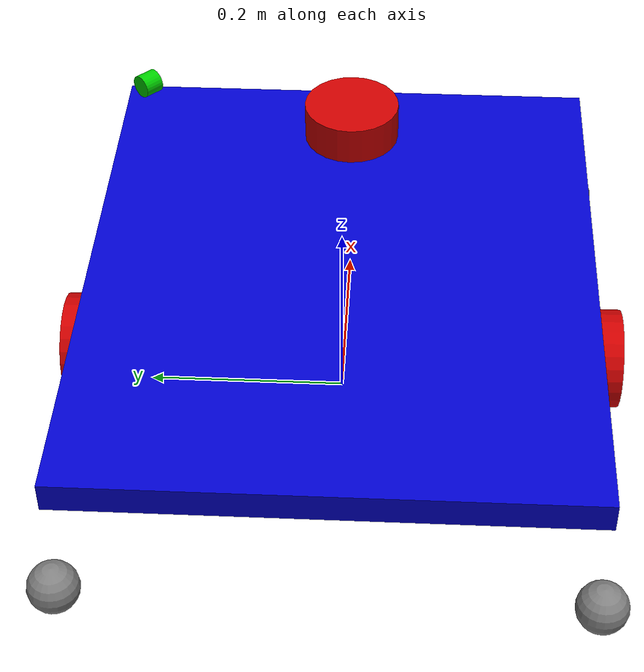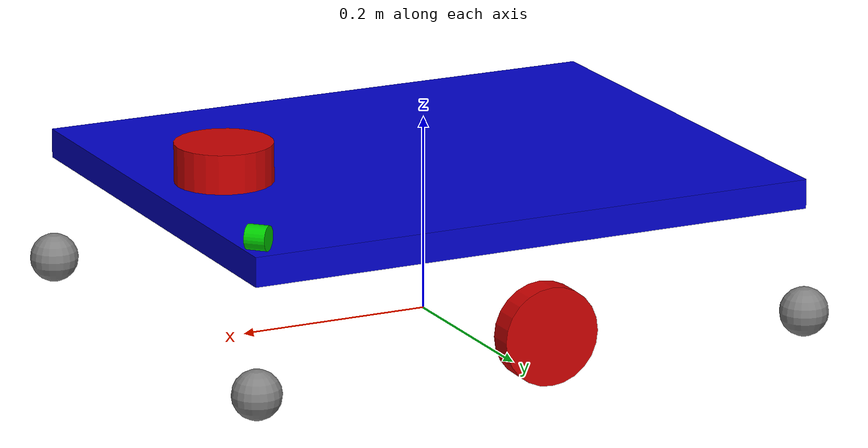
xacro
<?xml version="1.0"?>
<robot name="amr" xmlns:xacro="http://www.ros.org/wiki/xacro">

    <xacro:arg name="use_ros2_control" default="true" />

    <xacro:include filename="common_properties.xacro" />
    <xacro:include filename="robot_base.xacro" />

    <xacro:if value="$(arg use_ros2_control)">
        <xacro:include filename="ros2_control.xacro" />
    </xacro:if>
    <xacro:unless value="$(arg use_ros2_control)">
        <xacro:include filename="robot_base_gazebo.xacro" />
    </xacro:unless>

    <xacro:include filename="lidar.xacro" />
    <xacro:include filename="ultrasonic.xacro" />

</robot>

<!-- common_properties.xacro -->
<!-- to recognize the file as xml file, URDF uses metric system -->
<robot xmlns:xacro="http://www.ros.org/wiki/xacro">

    <!-- colour tags -->
    <material name="black">
        <color rgba="0.0 0.0 0.0 1.0"/>
    </material>

    <material name="blue">
        <color rgba="0 0 0.8 1" />
    </material>

    <material name="green">
        <color rgba="0.0 0.8 0.0 1.0"/>
    </material>

    <material name="grey">
        <color rgba="0.5 0.5 0.5 1" />
    </material>

    <material name="orange">
        <color rgba="0.8 0.4 0 1" />
    </material>

    <material name="yellow">
        <color rgba="0.8 0.8 0 1" />
    </material>

    <material name="brown">
        <color rgba="${222/255} ${207/255} ${195/255} 1.0"/>
    </material>

    <material name="red">
        <color rgba="0.8 0 0 1" />
    </material>

    <material name="white">
        <color rgba="1.0 1.0 1.0 1.0"/>
    </material>

    <!-- macros for defining inertia -->

    <xacro:macro name="box_inertia" params="m l w h xyz rpy">
        <inertial>
            <origin xyz="${xyz}" rpy="${rpy}" />
            <mass value="${m}" />
            <inertia ixx="${(m / 12.0) * (h*h + l*l)}" ixy="0" ixz="0"
                     iyy="${(m / 12.0) * (w*w + l*l)}" iyz="0"
                     izz="${(m / 12.0) * (w*w + h*h)}" />
        </inertial>
    </xacro:macro>

    <xacro:macro name="cylinder_inertia" params="m r h xyz rpy">
        <inertial>
            <origin xyz="${xyz}" rpy="${rpy}" />
            <mass value="${m}" />
            <inertia ixx="${(m / 12.0) * (3*r*r + h*h)}" ixy="0" ixz="0"
                     iyy="${(m / 12.0) * (3*r*r + h*h)}" iyz="0"
                     izz="${(m / 2.0) * (r*r)}" />
        </inertial>
    </xacro:macro>

    <xacro:macro name="sphere_inertia" params="m r xyz rpy">
        <inertial>
            <origin xyz="${xyz}" rpy="${rpy}" />
            <mass value="${m}" />
            <inertia ixx="${((2/5)*m*r*r)}" ixy="0" ixz="0"
                     iyy="${((2/5)*m*r*r)}" iyz="0"
                     izz="${((2/5)*m*r*r)}" />
        </inertial>
    </xacro:macro>

</robot>

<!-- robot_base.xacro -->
<!-- to recognize the file as xml file, URDF uses metric system -->
<robot xmlns:xacro="http://www.ros.org/wiki/xacro">

    <!-- declared variables -->
    <xacro:property name="base_length" value="0.6" />
    <xacro:property name="base_width" value="0.5" />
    <xacro:property name="base_height" value="0.03" />
    <xacro:property name="wheel_radius" value="0.05" />
    <xacro:property name="wheel_length" value="0.026" />
    <xacro:property name="caster_wheel_radius" value="${wheel_radius / 2.0}" />
    <xacro:property name="base_mass" value="5.0" />
    <xacro:property name="wheel_mass" value="1.00" />
    <xacro:property name="castor_wheel_mass" value="0.5" />

    <!-- robot links -->

    <link name="base_footprint" />

    <link name="base_link" >
        <visual>
            <geometry>
                <box size="${base_length} ${base_width} ${base_height}" />
            </geometry>
            <origin xyz="0 0 0" rpy="0 0 0" />
            <material name="blue" />
        </visual>
        <collision>
            <geometry>
                <box size="${base_length} ${base_width} ${base_height}" />     <!-- set size -->
            </geometry>
            <origin xyz="0 0 0" rpy="0 0 0" />
        </collision>
        <xacro:box_inertia m="${base_mass}" l="${2*base_length}" w="${2*base_width}" h="${2*base_height}"
                           xyz="0 0 ${wheel_radius}" rpy="0 0 0" />
    </link>

    <link name="left_wheel_link">    <!-- set second link name -->
        <visual>
            <geometry>
                <cylinder radius="${wheel_radius}" length="${wheel_length}" />     <!-- set size -->
            </geometry>
            <origin xyz="0 0 0" rpy="0 0 0" />
            <material name="red" />
        </visual>
        <collision>
            <geometry>
                <cylinder radius="${wheel_radius}" length="${wheel_length}" />     <!-- set size -->
            </geometry>
            <origin xyz="0 0 0" rpy="0 0 0" />
        </collision>
        <xacro:cylinder_inertia m="${wheel_mass}" r="${2*wheel_radius}" h="${2*wheel_length}"
                                xyz="0 0 0" rpy="0 0 0" />
    </link>

    <link name="right_wheel_link">    <!-- set second link name -->
        <visual>
            <geometry>
                <cylinder radius="${wheel_radius}" length="${wheel_length}" />     <!-- set size -->
            </geometry>
            <origin xyz="0 0 0" rpy="0 0 0" />
            <material name="red" />
        </visual>
        <collision>
            <geometry>
                <cylinder radius="${wheel_radius}" length="${wheel_length}" />     <!-- set size -->
            </geometry>
            <origin xyz="0 0 0" rpy="0 0 0" />
        </collision>
        <xacro:cylinder_inertia m="${wheel_mass}" r="${2*wheel_radius}" h="${2*wheel_length}"
                                xyz="0 0 0" rpy="0 0 0" />
    </link>

    <!-- macro for defining castor wheel links -->
    <xacro:macro name="castor_wheel_link" params="prefix">
        <link name="${prefix}_castor_wheel_link">    <!-- set second link name -->
            <visual>
                <geometry>
                    <sphere radius="${caster_wheel_radius}" />     <!-- set size -->
                </geometry>
                <origin xyz="0 0 0" rpy="0 0 0" />
                <material name="grey" />
            </visual>
            <collision>
                <geometry>
                    <sphere radius="${caster_wheel_radius}" />     <!-- set size -->
                </geometry>
                <origin xyz="0 0 0" rpy="0 0 0" />
            </collision>
            <xacro:sphere_inertia m="${castor_wheel_mass}" r="${2*caster_wheel_radius}"
                                    xyz="0 0 0" rpy="0 0 0" />
        </link>
    </xacro:macro>

    <xacro:castor_wheel_link prefix="front_right" />
    <xacro:castor_wheel_link prefix="back_right" />
    <xacro:castor_wheel_link prefix="back_left" />
    <xacro:castor_wheel_link prefix="front_left" />

    <!-- robot joints -->

    <joint name="footprint_base_jont" type="fixed">
        <parent link="base_footprint" />
        <child link="base_link" />
        <origin xyz="0 0 ${wheel_radius + 0.097}" rpy="0 0 0" />
    </joint>

    <joint name="base_right_wheel_joint" type="continuous">
        <parent link="base_link" />
        <child link="right_wheel_link" />
        <origin xyz="0 -0.27 -0.097" rpy="${pi / 2} 0 0" />
        <axis xyz="0 0 -1" />
    </joint>

    <joint name="base_left_wheel_joint" type="continuous">
        <parent link="base_link" />
        <child link="left_wheel_link" />
        <origin xyz="0 0.27 -0.097" rpy="${pi / 2} 0 0" />
        <axis xyz="0 0 -1" />
    </joint>

    <!-- macro for defining castor wheel joints -->
    <xacro:macro name="castor_wheel_joint" params="prefix parent child xyz rpy axis">
        <joint name="${prefix}_joint" type="fixed">
            <parent link="${parent}" />
            <child link="${child}" />
            <origin xyz="${xyz}" rpy="${rpy}" />
            <axis xyz="${axis}" />
        </joint>
    </xacro:macro>

    <xacro:castor_wheel_joint prefix="base_front_right_castor" parent="base_link" child="front_right_castor_wheel_link"
                              xyz="${base_length / 2} ${-base_width / 2} -0.122" rpy="0 0 0" axis="0 0 1" />

    <xacro:castor_wheel_joint prefix="base_back_right_castor" parent="base_link" child="front_left_castor_wheel_link"
                              xyz="${base_length / 2} ${base_width / 2} -0.122" rpy="0 0 0" axis="0 0 1" />

    <xacro:castor_wheel_joint prefix="base_back_left_castor" parent="base_link" child="back_left_castor_wheel_link"
                              xyz="${-base_length / 2} ${base_width / 2} -0.122" rpy="0 0 0" axis="0 0 1" />

    <xacro:castor_wheel_joint prefix="base_front_left_castor" parent="base_link" child="back_right_castor_wheel_link"
                              xyz="${-base_length / 2} ${-base_width / 2} -0.122" rpy="0 0 0" axis="0 0 1" />

</robot>

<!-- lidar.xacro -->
<robot xmlns:xacro="http://www.ros.org/wiki/xacro">

    <!-- laser joint-->
    <joint name="laser_joint" type="fixed" >
        <parent link="base_link" />
        <child link="laser_frame" />
        <origin xyz="0.22 0 0.035" rpy="0 0 0" />
    </joint>

    <!-- laser frame -->
    <link name="laser_frame">    <!-- set second link name -->
        <visual>
            <geometry>
                <cylinder radius="0.05" length="0.04" />     <!-- set size -->
            </geometry>
            <origin xyz="0 0 0" rpy="0 0 0" />
            <material name="red" />
        </visual>
        <collision>
            <geometry>
                <cylinder radius="0.05" length="0.04" />     <!-- set size -->
            </geometry>
            <origin xyz="0 0 0" rpy="0 0 0" />
        </collision>
        <xacro:cylinder_inertia m="1" r="0.05" h="0.04"
                                xyz="0 0 0" rpy="0 0 0" />
    </link>

    <!-- laser reference for gazebo -->
    <gazebo reference="laser_frame">
        <material>Gazebo/Red</material>

        <sensor name="laser" type="gpu_lidar">
            <pose> 0 0 0 0 0 0 </pose>
            <visualize>false</visualize>
            <update_rate>10</update_rate>
            <lidar>
                <scan>
                    <horizontal>
                        <samples>360</samples>
                        <min_angle>-3.14</min_angle>
                        <max_angle>3.14</max_angle>
                    </horizontal>
                </scan>
                <range>
                    <min>0.3</min>
                    <max>8</max>
                </range>
            </lidar>
                <topic>scan</topic>
                <gz_frame_id>laser_frame</gz_frame_id>
        </sensor>
    </gazebo>

</robot>

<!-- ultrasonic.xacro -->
<!-- to recognize the file as xml file, URDF uses metric system -->
<robot xmlns:xacro="http://www.ros.org/wiki/xacro">

    <!-- declared variables -->
    <xacro:property name="ultrasonic_mass" value="0.02" />
    <xacro:property name="ultrasonic_radius" value="0.0125" />
    <xacro:property name="ultrasonic_length" value="0.021" />

    <joint name="base_ultrasonic_sensor_joint" type="fixed">
        <parent link="base_link" />
        <child link="ultrasonic_sensor" />
        <origin xyz="${0.3 - ultrasonic_radius} ${0.25 - ultrasonic_length} 0.0275" rpy="${pi/2} 0 ${pi / 4}" />
    </joint>

    <link name="ultrasonic_sensor">
        <visual>
            <geometry>
                <cylinder radius="${ultrasonic_radius}" length="${ultrasonic_length}"/>
            </geometry>
            <origin xyz="0 0 0" rpy="0 0 0"/>
            <material name="green"/>
        </visual>
        <collision>
            <geometry>
                <cylinder radius="${ultrasonic_radius}" length="${ultrasonic_length}"/>
            </geometry>
            <origin xyz="0 0 0" rpy="0 0 0"/>
        </collision>
        <xacro:cylinder_inertia m="${ultrasonic_mass}" r="${2*ultrasonic_radius}" h="${2*ultrasonic_length}"
                                xyz="0 0 0" rpy="0 0 0" />
    </link>

</robot>
